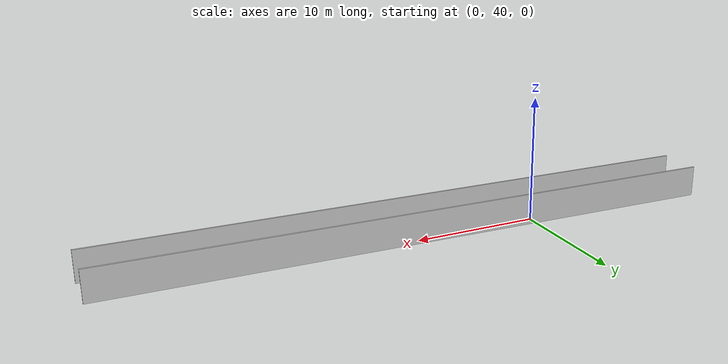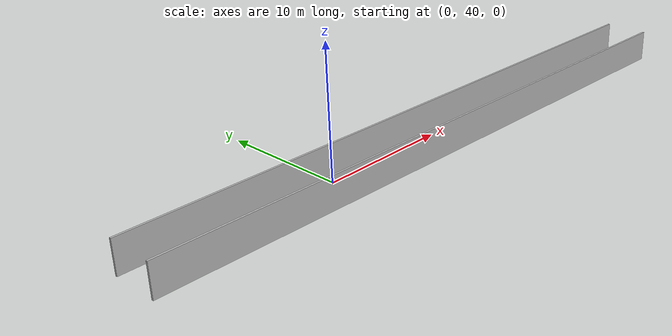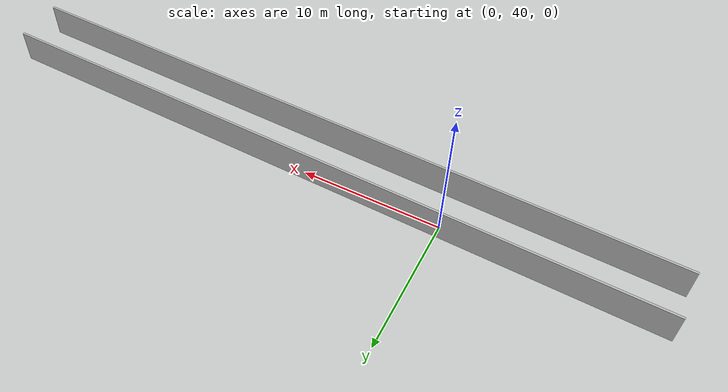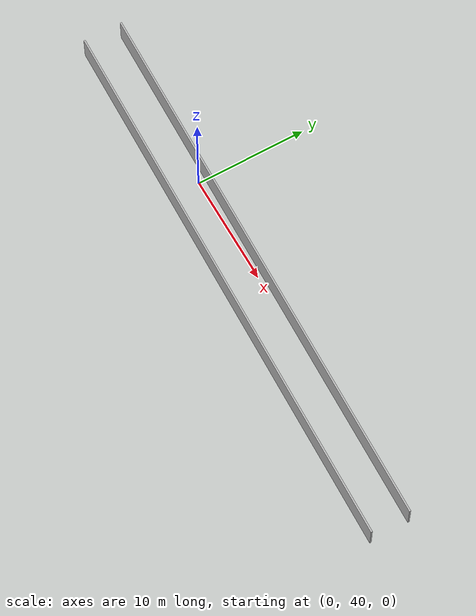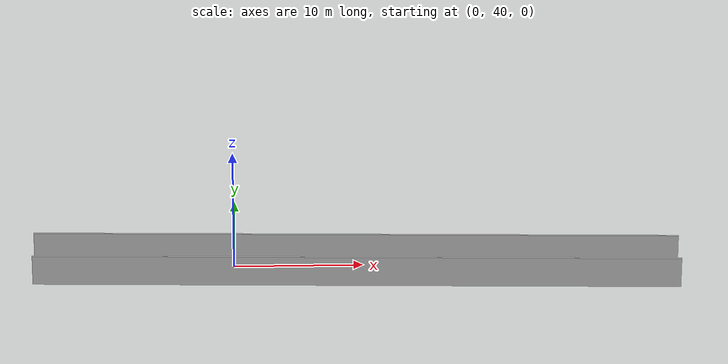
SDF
<?xml version="1.0" ?>
<sdf version="1.6">
  <model name="sps_3002">
    <pose frame="">0 0 0 0 -0 0</pose>
    <static>1</static>
    <self_collide>0</self_collide>
    <allow_auto_disable>0</allow_auto_disable>
    <link name="Wall458">
      <kinematic>0</kinematic>
      <gravity>1</gravity>
      <self_collide>0</self_collide>
      <collision name="collision">
        <geometry>
          <box>
            <size>50.0165 0.15 2.5</size>
          </box>
        </geometry>
        <pose frame="">0 0 0 0 -0 0</pose>
      </collision>
      <visual name="visual">
        <geometry>
          <box>
            <size>50.0165 0.15 2.5</size>
          </box>
        </geometry>
        <pose frame="">0 0 0 0 -0 0</pose>
        <cast_shadows>1</cast_shadows>
        <transparency>0.0</transparency>
      </visual>
      <pose frame="">9.46944 36.95 1.25 0 -0 3.11591</pose>
    </link>
    <link name="Wall467">
      <kinematic>0</kinematic>
      <gravity>1</gravity>
      <self_collide>0</self_collide>
      <collision name="collision">
        <geometry>
          <box>
            <size>50.0165 0.15 2.5</size>
          </box>
        </geometry>
        <pose frame="">0 0 0 0 -0 0</pose>
      </collision>
      <visual name="visual">
        <geometry>
          <box>
            <size>50.0165 0.15 2.5</size>
          </box>
        </geometry>
        <pose frame="">0 0 0 0 -0 0</pose>
        <cast_shadows>1</cast_shadows>
        <transparency>0.0</transparency>
      </visual>
      <pose frame="">9.46944 40.4509 1.25 0 0 -0.0256802</pose>
    </link>
  </model>
</sdf>
